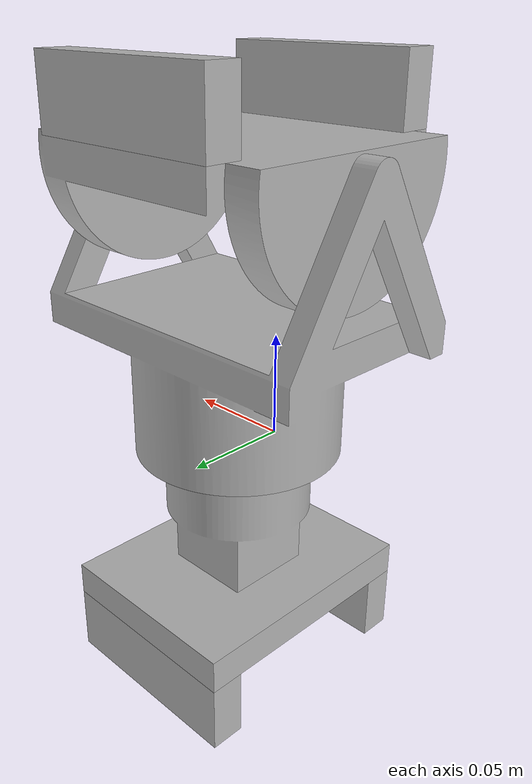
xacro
<?xml version="1.0"?>
<robot xmlns:xacro="http://www.ros.org/wiki/xacro" name="robot">

  <!--  true  → Gazebo   |   false → real hardware  -->
  <xacro:arg name="sim_mode" default="false"/>

  <!-- Links / visuals / collisions -->
  <xacro:include filename="robot_core.xacro"/>

  <!-- ros-control block (looks at $(arg sim_mode) internally) -->
  <xacro:include filename="ros2_control.xacro"/>

</robot>

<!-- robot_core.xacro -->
<robot xmlns:xacro="http://www.ros.org/wiki/xacro">

  <!-- Includes -->

  <!-- Materials -->
  <material name="silver">
    <color rgba="0.700 0.700 0.700 1.0"/>
  </material>

  <!-- World and Base Reference -->

  <link name="universe">

  <!-- Probably edit world joint origin to move gripper start position arround-->

  <joint name="world_joint" type="fixed">
    <parent link="universe"/>
    <child link="world"/>
    <origin xyz="0 0 0" rpy="0 0 0"/>
  </joint>

  <link name="world"/>

  </link>

  <joint name="base_link_joint" type="fixed">
    <parent link="universe"/>
    <child link="base_link"/>
    <origin xyz="0 0 0" rpy="0 0 0"/>
  </joint>

  <!-- Link Definitions -->
  <link name="base_link">
    <visual>
      <origin xyz="0 0 0" rpy="0 0 0"/>
      <geometry>
        <mesh filename="file://$(find gripperbot)/meshes/base_link.stl" scale="0.001 0.001 0.001"/>
      </geometry>
      <material name="silver"/>
    </visual>
    <collision>
      <origin xyz="0 0 0" rpy="0 0 0"/>
      <geometry>
        <mesh filename="file://$(find gripperbot)/meshes/base_link.stl" scale="0.001 0.001 0.001"/>
      </geometry>
    </collision>
    <inertial>
      <origin xyz="0.009225713675084443 0.0009395326248671956 0.16883786815064228" rpy="0 0 0"/>
      <mass value="4.129738615288243"/>
      <inertia ixx="0.004869" ixy="0" ixz="0" iyy="0.006843" iyz="0" izz="0.006671"/>
    </inertial>
  </link>

  <link name="Component5_1">
    <visual>
      <origin xyz="0.011816 -0.035888 -0.012432" rpy="0 0 0"/>
      <geometry>
        <mesh filename="file://$(find gripperbot)/meshes/Component5_1.stl" scale="0.001 0.001 0.001"/>
      </geometry>
      <material name="silver"/>
    </visual>
    <collision>
      <origin xyz="0.011816 -0.035888 -0.012432" rpy="0 0 0"/>
      <geometry>
        <mesh filename="file://$(find gripperbot)/meshes/Component5_1.stl" scale="0.001 0.001 0.001"/>
      </geometry>
    </collision>
    <inertial>
      <origin xyz="-2.8632491516460135e-07 -4.6737513356405816e-07 -0.04667345672442119" rpy="0 0 0"/>
      <mass value="2.3769738551034174"/>
      <inertia ixx="0.002572" ixy="0.000177" ixz="0" iyy="0.002954" iyz="0" izz="0.002679"/>
    </inertial>
  </link>

  <link name="Component1_1">
    <visual>
      <origin xyz="-0.048184 -0.035888 -0.137432" rpy="0 0 0"/>
      <geometry>
        <mesh filename="file://$(find gripperbot)/meshes/Component1_1.stl" scale="0.001 0.001 0.001"/>
      </geometry>
      <material name="silver"/>
    </visual>
    <collision>
      <origin xyz="-0.048184 -0.035888 -0.137432" rpy="0 0 0"/>
      <geometry>
        <mesh filename="file://$(find gripperbot)/meshes/Component1_1.stl" scale="0.001 0.001 0.001"/>
      </geometry>
    </collision>
    <inertial>
      <origin xyz="-0.06000028632491587 -4.6737513197765354e-07 -0.007836367251077725" rpy="0 0 0"/>
      <mass value="2.3311118820767818"/>
      <inertia ixx="0.002538" ixy="0" ixz="0" iyy="0.004372" iyz="0" izz="0.005986"/>
    </inertial>
  </link>

  <link name="Component3_1">
    <visual>
      <origin xyz="0.011816 -0.093388 -0.145432" rpy="0 0 0"/>
      <geometry>
        <mesh filename="file://$(find gripperbot)/meshes/Component3_1.stl" scale="0.001 0.001 0.001"/>
      </geometry>
      <material name="silver"/>
    </visual>
    <collision>
      <origin xyz="0.011816 -0.093388 -0.145432" rpy="0 0 0"/>
      <geometry>
        <mesh filename="file://$(find gripperbot)/meshes/Component3_1.stl" scale="0.001 0.001 0.001"/>
      </geometry>
    </collision>
    <inertial>
      <origin xyz="-2.8632491584634767e-07 -0.007500467375131714 0.014999759238118415" rpy="0 0 0"/>
      <mass value="0.3179250000000001"/>
      <inertia ixx="3e-05" ixy="0" ixz="0" iyy="0.000238" iyz="0" izz="0.000221"/>
    </inertial>
  </link>

  <link name="Component9_1">
    <visual>
      <origin xyz="0.011816 0.021612 -0.145432" rpy="0 0 0"/>
      <geometry>
        <mesh filename="file://$(find gripperbot)/meshes/Component9_1.stl" scale="0.001 0.001 0.001"/>
      </geometry>
      <material name="silver"/>
    </visual>
    <collision>
      <origin xyz="0.011816 0.021612 -0.145432" rpy="0 0 0"/>
      <geometry>
        <mesh filename="file://$(find gripperbot)/meshes/Component9_1.stl" scale="0.001 0.001 0.001"/>
      </geometry>
    </collision>
    <inertial>
      <origin xyz="-2.8632491608053534e-07 0.0074995326248675845 0.014999759238119414" rpy="0 0 0"/>
      <mass value="0.317924999999999"/>
      <inertia ixx="3e-05" ixy="0" ixz="0" iyy="0.000238" iyz="0" izz="0.000221"/>
    </inertial>
  </link>

  <link name="Component10_1">
    <visual>
      <origin xyz="0.009964 0.00974 0.030135" rpy="0 0 0"/>
      <geometry>
        <mesh filename="file://$(find gripperbot)/meshes/Component10_1.stl" scale="0.001 0.001 0.001"/>
      </geometry>
      <material name="silver"/>
    </visual>
    <collision>
      <origin xyz="0.009964 0.00974 0.030135" rpy="0 0 0"/>
      <geometry>
        <mesh filename="file://$(find gripperbot)/meshes/Component10_1.stl" scale="0.001 0.001 0.001"/>
      </geometry>
    </collision>
    <inertial>
      <origin xyz="-0.006984004938344654 0.002734264130490712 -0.015000240761882375" rpy="0 0 0"/>
      <mass value="0.3179249999999978"/>
      <inertia ixx="0.000211" ixy="-7.1e-05" ixz="0" iyy="5.8e-05" iyz="0" izz="0.000221"/>
    </inertial>
  </link>

  <link name="Component8_1">
    <visual>
      <origin xyz="0.066074 -0.054923 0.062568" rpy="0 0 0"/>
      <geometry>
        <mesh filename="file://$(find gripperbot)/meshes/Component8_1.stl" scale="0.001 0.001 0.001"/>
      </geometry>
      <material name="silver"/>
    </visual>
    <collision>
      <origin xyz="0.066074 -0.054923 0.062568" rpy="0 0 0"/>
      <geometry>
        <mesh filename="file://$(find gripperbot)/meshes/Component8_1.stl" scale="0.001 0.001 0.001"/>
      </geometry>
    </collision>
    <inertial>
      <origin xyz="0.006983432288514446 -0.0027341988807576927 -0.015000240761882014" rpy="0 0 0"/>
      <mass value="0.3179249999999989"/>
      <inertia ixx="0.000211" ixy="-7.1e-05" ixz="0" iyy="5.8e-05" iyz="0" izz="0.000221"/>
    </inertial>
  </link>

  <!-- Joint Definitions -->
  <joint name="Revolute22" type="continuous">
    <origin xyz="-0.011816 0.035888 0.012432" rpy="0 0 0"/>
    <parent link="base_link"/>
    <child link="Component5_1"/>
    <axis xyz="0 0 -1"/>
    <limit effort="100" velocity="1"/>
  </joint>

  <joint name="Revolute27" type="revolute">
    <origin xyz="0.048184 0.035888 0.137432" rpy="0 0 0"/>
    <parent link="base_link"/>
    <child link="Component1_1"/>
    <axis xyz="-1 0 0"/>
    <limit lower="-1.570796" upper="1.570796" effort="100" velocity="100"/>
  </joint>

  <joint name="Slider28" type="prismatic">
    <origin xyz="-0.06 0.0575 0.008" rpy="0 0 0"/>
    <parent link="Component1_1"/>
    <child link="Component3_1"/>
    <axis xyz="0 1 0"/>
    <limit lower="-0.0425" upper="0" effort="100" velocity="100"/>
  </joint>

  <joint name="Slider29" type="prismatic">
    <origin xyz="-0.06 -0.0575 0.008" rpy="0 0 0"/>
    <parent link="Component1_1"/>
    <child link="Component9_1"/>
    <axis xyz="0 -1 0"/>
    <limit lower="-0.0425" upper="0" effort="100" velocity="100"/>
  </joint>

  <joint name="Slider30" type="prismatic">
    <origin xyz="0.001852 -0.045628 -0.042567" rpy="0 0 0"/>
    <parent link="Component5_1"/>
    <child link="Component10_1"/>
    <axis xyz="0 1 0"/>
    <limit lower="-0.0425" upper="0" effort="100" velocity="100"/>
  </joint>

  <joint name="Slider31" type="prismatic">
    <origin xyz="-0.054258 0.019035 -0.075" rpy="0 0 0"/>
    <parent link="Component5_1"/>
    <child link="Component8_1"/>
    <axis xyz="0 -1 0"/>
    <limit lower="-0.0425" upper="0" effort="100" velocity="100"/>
  </joint>
</robot>
